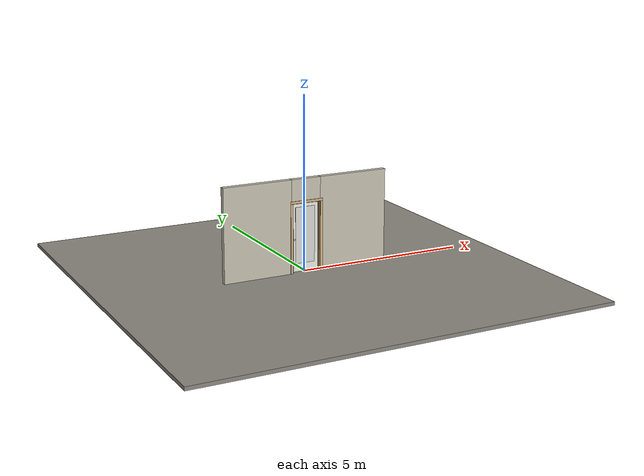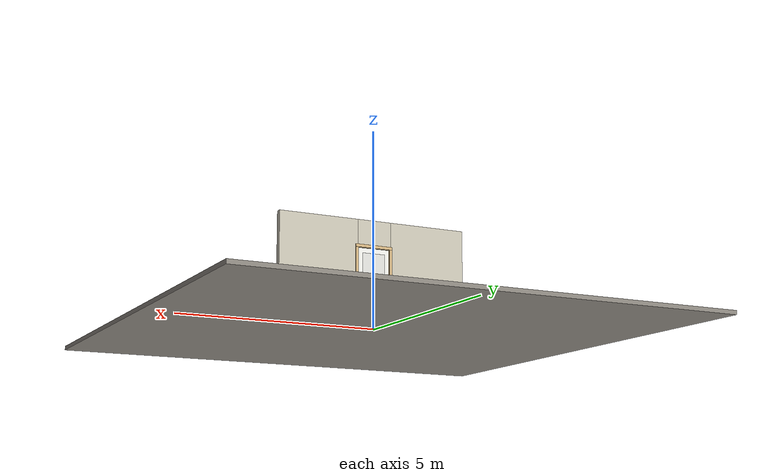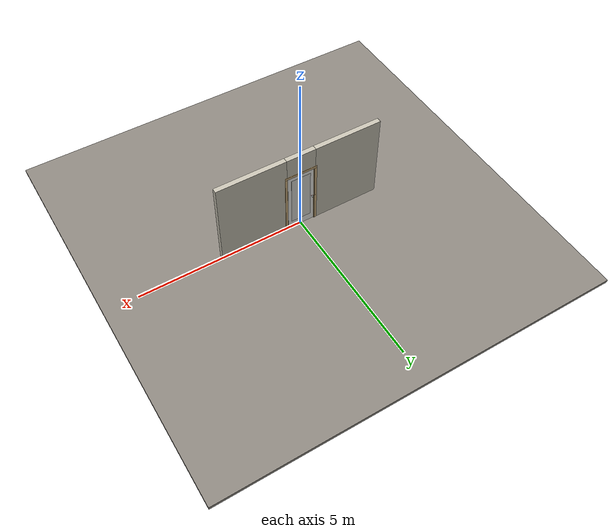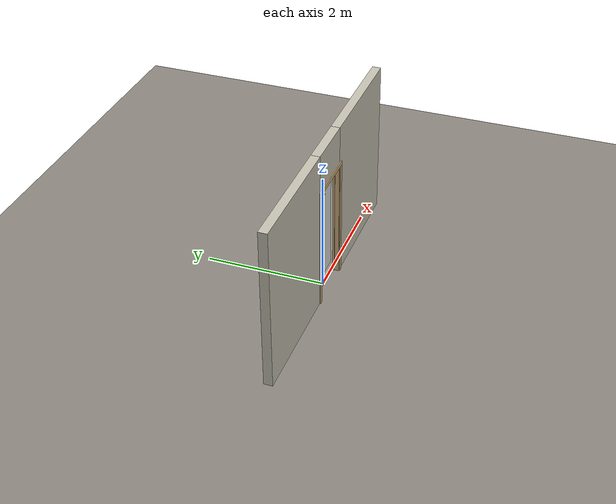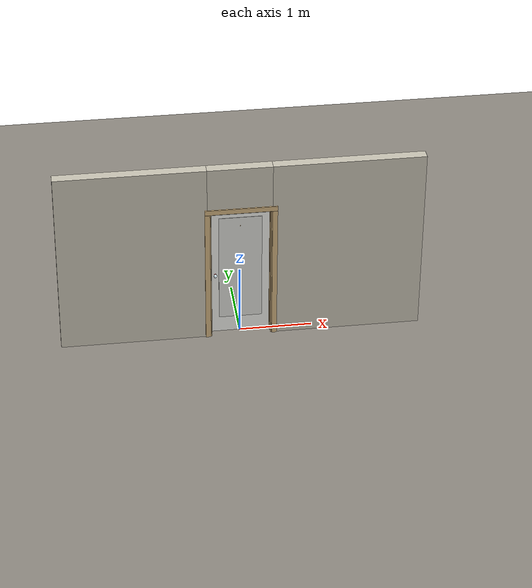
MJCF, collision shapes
<?xml version="1.0" ?>
<mujoco model="db0013_swing_single_full">
  <compiler angle="radian" meshdir="../../hardware" texturedir="../../textures" autolimits="true" inertiafromgeom="false"/>
  <option timestep="0.002" integrator="implicitfast" cone="elliptic" impratio="10" noslip_iterations="3">
    <flag multiccd="enable"/>
  </option>
  <size memory="16M"/>
  <default>
    <geom condim="4" solref="0.005 1" solimp="0.95 0.99 0.001"/>
    <joint solreflimit="0.005 1" solimplimit="0.95 0.99 0.001"/>
    <tendon solreflimit="0.005 1"/>
    <equality solref="0.002 1"/>
  </default>
  <visual>
    <headlight ambient="0.4 0.4 0.4" diffuse="0.7 0.7 0.7" specular="0.2 0.2 0.2"/>
    <quality shadowsize="4096"/>
    <map znear="0.01" zfar="60"/>
  </visual>
  <asset>
    <mesh name="hinge_96510cf394" file="hinge_96510cf394.obj"/>
    <mesh name="hinge_jamb_7fd4ca52b2" file="hinge_jamb_7fd4ca52b2.obj"/>
    <mesh name="knob_98a7916ed0" file="knob_98a7916ed0.obj"/>
    <mesh name="wreath_86a3f1bf8b" file="wreath_86a3f1bf8b.obj"/>
    <material name="mat_floor" rgba="0.55 0.53 0.5 1" specular="0.2" shininess="0.15" reflectance="0"/>
    <material name="mat_wall" rgba="0.78 0.76 0.7 1" specular="0.2" shininess="0.1" reflectance="0"/>
    <material name="mat_leaf" rgba="0.93 0.93 0.91 1" specular="0.2" shininess="0.53" reflectance="0"/>
    <material name="mat_leaf_panel" rgba="0.856 0.856 0.837 1" specular="0.2" shininess="0.53" reflectance="0"/>
    <material name="mat_hinge" rgba="0.65 0.66 0.68 1" specular="0.74" shininess="0.5" reflectance="0.36"/>
    <material name="mat_op_glass_clear" rgba="0.85 0.92 0.95 0.25" specular="0.2" shininess="0.95" reflectance="0.1"/>
    <material name="mat_trim" rgba="0.85 0.66 0.3 1" specular="0.8" shininess="0.75" reflectance="0.4"/>
    <material name="mat_bolt" rgba="0.85 0.66 0.3 1" specular="0.8" shininess="0.75" reflectance="0.4"/>
    <material name="mat_frame" rgba="0.82 0.7 0.5 1" specular="0.2" shininess="0.45" reflectance="0"/>
    <material name="mat_seal" rgba="0.1 0.1 0.1 1" specular="0.2" shininess="0.1" reflectance="0"/>
    <material name="mat_wreath" rgba="0.12 0.3 0.12 1" specular="0.2" shininess="0.05" reflectance="0"/>
    <material name="mat_wreath_hook" rgba="0.85 0.66 0.3 1" specular="0.8" shininess="0.75" reflectance="0.4"/>
    <texture name="skybox" type="skybox" builtin="gradient" rgb1="0.6 0.7 0.85" rgb2="0.9 0.92 0.95" width="256" height="256"/>
  </asset>
  <worldbody>
    <light name="sun" pos="1.5 -2.5 4" dir="-0.3 0.5 -0.8" directional="true" diffuse="0.8 0.8 0.8" specular="0.3 0.3 0.3" castshadow="true"/>
    <light name="fill" pos="-1.5 2.5 3" dir="0.3 -0.5 -0.7" directional="true" diffuse="0.35 0.35 0.4" castshadow="false"/>
    <camera name="robot_view" pos="0 -2.546125 1.698475" xyaxes="1 0 0 0 0.26963 0.962964" fovy="52"/>
    <camera name="far_view" pos="0 2.450125 1.698475" xyaxes="-1 0 0 0 -0.26963 0.962964" fovy="52"/>
    <camera name="iso" pos="-1.898575 -2.146425 2.098175" xyaxes="0.741536 -0.670913 0 0.242917 0.268487 0.932151" fovy="46"/>
    <camera name="detail_handle" pos="-0.166 -0.8625 1.245" xyaxes="0.97561 0.219512 0 -0.070934 0.315262 0.94635" fovy="38"/>
    <geom name="floor" type="box" size="6 6 0.05" pos="0 0 -0.05" material="mat_floor" group="0" contype="1" conaffinity="1" friction="0.8 0.005 0.0001" density="2400"/>
    <geom name="wall_left" type="box" size="1.0205 0.0725 1.35" pos="-1.4795 -0.048 1.35" material="mat_wall" group="0" contype="1" conaffinity="1" friction="0.6 0.005 0.0001" density="800"/>
    <geom name="wall_right" type="box" size="1.0355 0.0725 1.35" pos="1.4645 -0.048 1.35" material="mat_wall" group="0" contype="1" conaffinity="1" friction="0.6 0.005 0.0001" density="800"/>
    <geom name="wall_header" type="box" size="0.444 0.0725 0.3265" pos="-0.015 -0.048 2.3735" material="mat_wall" group="0" contype="1" conaffinity="1" friction="0.6 0.005 0.0001" density="800"/>
    <geom name="hinge_0_jamb" type="mesh" mesh="hinge_jamb_7fd4ca52b2" pos="0.407 0.0245 0.259" quat="0 0 0 1" material="mat_hinge" group="1" contype="0" conaffinity="0" density="7850"/>
    <geom name="hinge_1_jamb" type="mesh" mesh="hinge_jamb_7fd4ca52b2" pos="0.407 0.0245 1.814" quat="0 0 0 1" material="mat_hinge" group="1" contype="0" conaffinity="0" density="7850"/>
    <geom name="jamb_hinge" type="box" size="0.0095 0.0725 0.999" pos="0.4195 -0.048 0.999" material="mat_frame" group="0" contype="1" conaffinity="1" friction="0.6 0.005 0.0001" density="400"/>
    <geom name="strike_965_wall_n" type="box" size="0.0245 0.056325 0.0167" pos="-0.4345 -0.064175 0.965" material="mat_frame" group="0" contype="1" conaffinity="1" friction="0.6 0.005 0.0001" density="400"/>
    <geom name="strike_965_wall_p" type="box" size="0.0245 0.008 0.0167" pos="-0.4345 0.01585 0.965" material="mat_frame" group="0" contype="1" conaffinity="1" friction="0.6 0.005 0.0001" density="400"/>
    <geom name="strike_965_ramp" type="box" size="0.0245 0.01649 0.0167" pos="-0.439136 0.028673 0.965" quat="0.977148 0 0 0.212558" material="mat_frame" group="0" contype="1" conaffinity="1" friction="0.12 0.005 0.0001" density="400"/>
    <geom name="strike_965_back" type="box" size="0.01615 0.00785 0.0167" pos="-0.44285 0 0.965" material="mat_frame" group="0" contype="1" conaffinity="1" friction="0.6 0.005 0.0001" density="400"/>
    <geom name="jamb_strike_0" type="box" size="0.0245 0.0725 0.47415" pos="-0.4345 -0.048 0.47415" material="mat_frame" group="0" contype="1" conaffinity="1" friction="0.6 0.005 0.0001" density="400"/>
    <geom name="jamb_strike_1" type="box" size="0.0245 0.0725 0.50815" pos="-0.4345 -0.048 1.48985" material="mat_frame" group="0" contype="1" conaffinity="1" friction="0.6 0.005 0.0001" density="400"/>
    <geom name="jamb_head" type="box" size="0.444 0.0725 0.0095" pos="-0.015 -0.048 2.0075" material="mat_frame" group="0" contype="1" conaffinity="1" friction="0.6 0.005 0.0001" density="400"/>
    <geom name="head_stud" type="box" size="0.444 0.0725 0.015" pos="-0.015 -0.048 2.032" material="mat_wall" group="0" contype="1" conaffinity="1" friction="0.6 0.005 0.0001" density="500"/>
    <geom name="stop_hinge" type="box" size="0.0055 0.016 0.999" pos="0.4045 -0.034 0.999" material="mat_frame" group="0" contype="1" conaffinity="1" friction="0.6 0.005 0.0001" density="400"/>
    <geom name="stop_strike" type="box" size="0.0055 0.016 0.999" pos="-0.4045 -0.034 0.999" material="mat_frame" group="0" contype="1" conaffinity="1" friction="0.6 0.005 0.0001" density="400"/>
    <geom name="stop_head" type="box" size="0.41 0.016 0.0055" pos="0 -0.034 1.9925" material="mat_frame" group="0" contype="1" conaffinity="1" friction="0.6 0.005 0.0001" density="400"/>
    <geom name="seal_hinge" type="box" size="0.004 0.002 0.999" pos="0.407 -0.0195 0.999" material="mat_seal" group="1" contype="0" conaffinity="0" density="1100"/>
    <geom name="seal_strike" type="box" size="0.004 0.002 0.999" pos="-0.407 -0.0195 0.999" material="mat_seal" group="1" contype="0" conaffinity="0" density="1100"/>
    <geom name="seal_head" type="box" size="0.39 0.002 0.008" pos="0 -0.0195 1.986" material="mat_seal" group="1" contype="0" conaffinity="0" density="1100"/>
    <geom name="casing_l_n" type="box" size="0.035 0.008 1.0085" pos="-0.459 -0.1285 0.999" material="mat_frame" group="2" contype="0" conaffinity="0" density="400"/>
    <geom name="casing_r_n" type="box" size="0.035 0.008 1.0085" pos="0.459 -0.1285 0.999" material="mat_frame" group="2" contype="0" conaffinity="0" density="400"/>
    <geom name="casing_h_n" type="box" size="0.494 0.008 0.035" pos="0 -0.1285 2.047" material="mat_frame" group="2" contype="0" conaffinity="0" density="400"/>
    <geom name="casing_l_p" type="box" size="0.035 0.008 1.0085" pos="-0.459 0.0325 0.999" material="mat_frame" group="2" contype="0" conaffinity="0" density="400"/>
    <geom name="casing_r_p" type="box" size="0.035 0.008 1.0085" pos="0.459 0.0325 0.999" material="mat_frame" group="2" contype="0" conaffinity="0" density="400"/>
    <geom name="casing_h_p" type="box" size="0.494 0.008 0.035" pos="0 0.0325 2.047" material="mat_frame" group="2" contype="0" conaffinity="0" density="400"/>
    <site name="approach_point" pos="0 -1.5 0" quat="1 0 0 0" size="0.05" rgba="0.2 0.9 0.2 0.5" group="4"/>
    <site name="goal_point" pos="0 1.5 0" quat="1 0 0 0" size="0.05" rgba="0.2 0.9 0.2 0.5" group="4"/>
    <site name="door_plane_center" pos="0 0 0.999" quat="1 0 0 0" size="0.02" rgba="0.2 0.9 0.2 0.5" group="4"/>
    <body name="leaf" pos="0.41 0 0">
      <inertial pos="-0.401604 -0.007192 1.064185" mass="12.317235" quat="0.50215 -0.498189 0.496171 0.503456" diaginertia="0.666039677 4.071058234 4.723296367"/>
      <joint name="leaf_hinge" type="hinge" axis="0 0 -1" pos="-0.003 0.0245 0" limited="true" range="0 1.919862" solreflimit="0.02 1" damping="0.206618" frictionloss="0.515438" armature="0.02"/>
      <geom name="leaf_slab" type="box" size="0.4065 0.0175 0.9925" pos="-0.4095 0 1.0015" material="mat_leaf" group="0" contype="1" conaffinity="1" friction="0.35 0.005 0.0001" density="1"/>
      <geom name="leaf_panel_0_n" type="box" size="0.2965 0.003 0.8137" pos="-0.4095 -0.0205 1.06105" material="mat_leaf_panel" group="1" contype="0" conaffinity="0" density="1"/>
      <geom name="leaf_panel_0_p" type="box" size="0.2965 0.003 0.8137" pos="-0.4095 0.0205 1.06105" material="mat_leaf_panel" group="1" contype="0" conaffinity="0" density="1"/>
      <geom name="hinge_0" type="mesh" mesh="hinge_96510cf394" pos="-0.003 0.0245 0.259" quat="0 0 0 1" material="mat_hinge" group="1" contype="0" conaffinity="0" density="7850"/>
      <geom name="hinge_1" type="mesh" mesh="hinge_96510cf394" pos="-0.003 0.0245 1.814" quat="0 0 0 1" material="mat_hinge" group="1" contype="0" conaffinity="0" density="7850"/>
      <geom name="leaf_latch_bolt_faceplate" type="box" size="0.0006 0.01235 0.0267" pos="-0.8154 0 0.965" material="mat_bolt" group="1" contype="0" conaffinity="0" density="8500"/>
      <geom name="wreath" type="mesh" mesh="wreath_86a3f1bf8b" pos="-0.4095 -0.0175 1.5573" quat="0 0 -0.707107 0.707107" material="mat_wreath" group="2" contype="0" conaffinity="0" density="200"/>
      <geom name="wreath_hook" type="cylinder" size="0.004 0.008" pos="-0.4095 -0.0245 1.7453" quat="0.707107 -0.707107 0 0" material="mat_wreath_hook" group="2" contype="0" conaffinity="0" density="8500"/>
      <site name="leaf_edge_mid" pos="-0.816 0 0.9925" quat="1 0 0 0" size="0.02" rgba="0.2 0.9 0.2 0.5" group="4"/>
      <body name="leaf_handle" pos="-0.756 0 0.965">
        <inertial pos="0 0 0" mass="0.963808" quat="0.5 0.5 0.5 0.5" diaginertia="0.000215172 0.002993593 0.002993593"/>
        <joint name="leaf_handle_hinge" type="hinge" axis="0 1 0" limited="true" range="0 0.8" damping="0.119588" frictionloss="0.032" stiffness="0.35" springref="-0.428571" armature="0.01"/>
        <geom name="leaf_handle_spindle" type="cylinder" size="0.006 0.0255" pos="0 0 0" quat="0.707107 -0.707107 0 0" material="mat_op_glass_clear" group="1" contype="0" conaffinity="0" density="7850"/>
        <geom name="leaf_handle_knob_n" type="mesh" mesh="knob_98a7916ed0" pos="0 -0.0175 0" quat="0 0 -0.707107 0.707107" material="mat_op_glass_clear" group="1" contype="0" conaffinity="0" density="3000"/>
        <geom name="leaf_handle_knob_col_n" type="sphere" size="0.0234" pos="0 -0.0625 0" material="mat_op_glass_clear" group="0" contype="1" conaffinity="1" friction="0.9 0.01 0.0001" density="3000"/>
        <geom name="leaf_handle_knob_neck_n" type="cylinder" size="0.011 0.012" pos="0 -0.0295 0" quat="0.707107 -0.707107 0 0" material="mat_op_glass_clear" group="3" contype="1" conaffinity="1" rgba="0.8 0.3 0.3 0.25" friction="0.6 0.005 0.0001" density="3000"/>
        <geom name="leaf_handle_knob_p" type="mesh" mesh="knob_98a7916ed0" pos="0 0.0175 0" quat="0 0 0.707107 0.707107" material="mat_op_glass_clear" group="1" contype="0" conaffinity="0" density="3000"/>
        <geom name="leaf_handle_knob_col_p" type="sphere" size="0.0234" pos="0 0.0625 0" material="mat_op_glass_clear" group="0" contype="1" conaffinity="1" friction="0.9 0.01 0.0001" density="3000"/>
        <geom name="leaf_handle_knob_neck_p" type="cylinder" size="0.011 0.012" pos="0 0.0295 0" quat="0.707107 -0.707107 0 0" material="mat_op_glass_clear" group="3" contype="1" conaffinity="1" rgba="0.8 0.3 0.3 0.25" friction="0.6 0.005 0.0001" density="3000"/>
        <site name="leaf_handle_grip_n" pos="0 -0.0625 0" quat="1 0 0 0" size="0.012" rgba="0.2 0.9 0.2 0.5" group="4"/>
        <site name="leaf_handle_grip_p" pos="0 0.0625 0" quat="1 0 0 0" size="0.012" rgba="0.2 0.9 0.2 0.5" group="4"/>
      </body>
      <body name="leaf_latch_bolt" pos="-0.816 0 0.965">
        <inertial pos="0.00865 0 0" mass="0.041419" quat="0.92388 0.382683 0 0" diaginertia="0.000000798 0.000005598 0.000005598"/>
        <joint name="leaf_latch_bolt_slide" type="slide" axis="1 0 0" limited="true" range="0 0.0127" damping="2" frictionloss="0.3" stiffness="300" springref="-0.008333" armature="0.1"/>
        <geom name="leaf_latch_bolt_capsule" type="capsule" size="0.00635 0.015" pos="0.00865 0 0" quat="0.707107 0 -0.707107 0" material="mat_bolt" group="0" contype="1" conaffinity="1" friction="0.2 0.005 0.0001" density="8500"/>
      </body>
    </body>
  </worldbody>
  <tendon>
    <fixed name="leaf_latch_bolt_coupling" limited="true" range="0 10">
      <joint joint="leaf_latch_bolt_slide" coef="1"/>
      <joint joint="leaf_handle_hinge" coef="-0.019538"/>
    </fixed>
  </tendon>
  <sensor>
    <jointpos name="leaf_hinge_pos" joint="leaf_hinge"/>
    <jointvel name="leaf_hinge_vel" joint="leaf_hinge"/>
    <jointpos name="leaf_handle_hinge_pos" joint="leaf_handle_hinge"/>
    <jointvel name="leaf_handle_hinge_vel" joint="leaf_handle_hinge"/>
    <jointpos name="leaf_latch_bolt_slide_pos" joint="leaf_latch_bolt_slide"/>
    <jointvel name="leaf_latch_bolt_slide_vel" joint="leaf_latch_bolt_slide"/>
  </sensor>
</mujoco>
